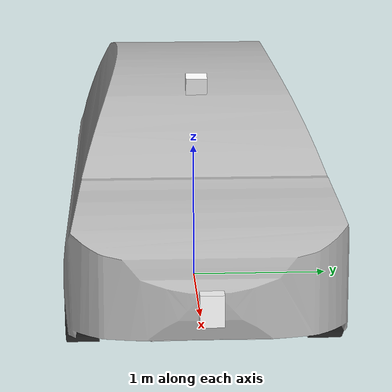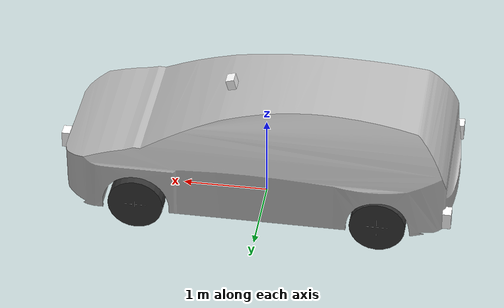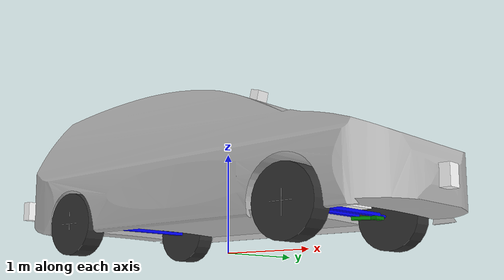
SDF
<?xml version='1.0' ?>
<sdf version="1.6">
  <model name="prius_1">
    <pose>0 0 0 0 0 0</pose>
    <!-- The following link and fixed joint positions the model's root to be in
    the middle of the vehicle's rear axle. See #5341. -->
    <link name="root">
      <pose>-1.40948 0 0.378326 0 0 0</pose>
    </link>
    <joint name="root_to_chassis_floor_joint" type="fixed">
      <parent>root</parent>
      <child>chassis_floor</child>
      <pose>0 0 0 0 0 0</pose>
    </joint>
    <link name="chassis_floor">
      <pose>0 0 0.378326 0 0 0</pose>
      <inertial>
        <pose>0 0 0 0 0 0</pose>
        <!-- TODO(shensquared): Refine the weight distribution when the model is
             of higher fidelity. -->
        <mass>1360</mass>
        <inertia>
          <ixx>63.858358934</ixx>
          <ixy>0</ixy>
          <ixz>0</ixz>
          <iyy>940.662671467</iyy>
          <iyz>0</iyz>
          <izz>1004.304312533</izz>
        </inertia>
      </inertial>
      <visual name="main">
        <pose>0 0 0 0 0 0</pose>
        <geometry>
          <box>
            <size>2.8808 0.75 0.030921</size>
          </box>
        </geometry>
        <material>
          <diffuse>1 1 1 1</diffuse>
        </material>
      </visual>
    </link>
    <link name="front_axle">
      <pose>1.40948 0 0.323342 0 0 0</pose>
      <visual name="visual">
        <pose>0 0 0 0 0 0</pose>
        <geometry>
          <box>
            <size>0.061842 1.05132 0.030921</size>
          </box>
        </geometry>
        <material>
          <diffuse>0 0 1 1</diffuse>
        </material>
      </visual>
    </link>
    <link name="left_tie_rod_arm">
      <pose>1.23701032 0.40850253 0.292422 0 0 0</pose>
      <visual name="v2">
        <pose>.06385963 0.03192981 0 0 0 0.463648</pose>
        <geometry>
          <box>
            <size>0.204637 0.061842 0.030921</size>
          </box>
        </geometry>
        <material>
          <diffuse>0 0.5 0 1</diffuse>
        </material>
      </visual>
      <visual name="v1">
        <pose>.17246863 0.10851978 0 0 -0 0</pose>
        <geometry>
          <box>
            <size>0.061842 0.140955 0.030921</size>
          </box>
        </geometry>
        <material>
          <diffuse>0 0.5 0 1</diffuse>
        </material>
      </visual>
    </link>
    <link name="left_hub">
      <pose>1.40948 0.61841 0.316482 1.570796326794896557998982 0 0</pose>
      <visual name="visual">
        <pose>0 0 0 0 0 0</pose>
        <geometry>
          <cylinder>
            <length>0.0618421</length>
            <radius>0.0154605</radius>
          </cylinder>
        </geometry>
        <material>
          <diffuse>0 0 1 1</diffuse>
        </material>
      </visual>
    </link>
    <link name="tie_rod">
      <pose>1.23702 0 0.323342 0 0 0</pose>
      <visual name="visual">
        <pose>0 0 0 0 0 0</pose>
        <geometry>
          <box>
            <size>0.061842 0.878847 0.030921</size>
          </box>
        </geometry>
        <material>
          <diffuse>0 0 1 1</diffuse>
        </material>
      </visual>
    </link>
    <link name="left_wheel">
      <pose>1.40948 0.801993 0.3164819999999999855511135
        1.570796326794896557998982 0 0</pose>
      <inertial>
        <mass>14.28</mass>
        <inertia>
          <ixx>0.499912</ixx>
          <ixy>0</ixy>
          <ixz>0</ixz>
          <iyy>0.778439</iyy>
          <iyz>0</iyz>
          <izz>0.499912</izz>
        </inertia>
      </inertial>
      <visual name="m2">
        <pose>0 0 -.1075 0 1.570796326794896557998982
          3.141592653589793115997963</pose>
        <material>
          <diffuse>0.9 0.9 0.9 1</diffuse>
        </material>
        <geometry>
          <box>
            <size>0.0025 0.0025 0.25</size>
          </box>
        </geometry>
      </visual>
      <visual name="wheel">
        <pose>0 0 0 0 0 0</pose>
        <geometry>
          <cylinder>
            <length>0.215</length>
            <radius>0.323342</radius>
          </cylinder>
        </geometry>
        <material>
          <diffuse>0.2 0.2 0.2 1</diffuse>
        </material>
      </visual>
      <visual name="m1">
        <pose>0 0 -.1075 0 1.570796326794896557998982
          1.570796326794896557998982</pose>
        <material>
          <diffuse>0.9 0.9 0.9 1</diffuse>
        </material>
        <geometry>
          <box>
            <size>0.0025 0.0025 0.25</size>
          </box>
        </geometry>
      </visual>
      <collision name="wheel">
        <pose>0 0 0 0 0 0</pose>
        <geometry>
          <cylinder>
            <radius>0.323342</radius>
            <length>0.215</length>
          </cylinder>
        </geometry>
      </collision>
    </link>
    <link name="right_tie_rod_arm">
      <pose>1.23701032 -0.40849616 0.292422 0 0 0</pose>
      <visual name="v1">
        <pose>.17246863 -0.10851978 0 0 -0 0</pose>
        <geometry>
          <box>
            <size>0.061842 0.140955 0.030921</size>
          </box>
        </geometry>
        <material>
          <diffuse>0 0.5 0 1</diffuse>
        </material>
      </visual>
      <visual name="v2">
        <pose>.06385963 -0.03192981 0 0 0 -0.463648</pose>
        <geometry>
          <box>
            <size>0.204637 0.061842 0.030921</size>
          </box>
        </geometry>
        <material>
          <diffuse>0 0.5 0 1</diffuse>
        </material>
      </visual>
    </link>
    <link name="right_hub">
      <pose>1.40948 -0.61841 0.316482 1.570796326794896557998982 0 0</pose>
      <visual name="visual">
        <pose>0 0 0 0 0 0</pose>
        <geometry>
          <cylinder>
            <length>0.0618421</length>
            <radius>0.0154605</radius>
          </cylinder>
        </geometry>
        <material>
          <diffuse>0 0 1 1</diffuse>
        </material>
      </visual>
    </link>
    <link name="right_wheel">
      <pose>1.40948 -0.80198 0.3164819999999999855511135
        1.570796326794896557998982 0 0</pose>
      <inertial>
        <mass>14.28</mass>
        <inertia>
          <ixx>0.499912</ixx>
          <ixy>0</ixy>
          <ixz>0</ixz>
          <iyy>0.778439</iyy>
          <iyz>0</iyz>
          <izz>0.499912</izz>
        </inertia>
      </inertial>
      <visual name="m2">
        <pose>0 0 .1075 0 1.570796326794896557998982
          3.141592653589793115997963</pose>
        <material>
          <diffuse>0.9 0.9 0.9 1</diffuse>
        </material>
        <geometry>
          <box>
            <size>0.0025 0.0025 0.25</size>
          </box>
        </geometry>
      </visual>
      <visual name="wheel">
        <pose>0 0 0 0 0 0</pose>
        <geometry>
          <cylinder>
            <length>0.215</length>
            <radius>0.323342</radius>
          </cylinder>
        </geometry>
        <material>
          <diffuse>0.2 0.2 0.2 1</diffuse>
        </material>
      </visual>
      <visual name="m1">
        <pose>0 0 0.1075 0 1.570796326794896557998982
          1.570796326794896557998982</pose>
        <material>
          <diffuse>0.9 0.9 0.9 1</diffuse>
        </material>
        <geometry>
          <box>
            <size>0.0025 0.0025 0.25</size>
          </box>
        </geometry>
      </visual>
      <collision name="wheel">
        <pose>0 0 0 0 0 0</pose>
        <geometry>
          <cylinder>
            <radius>0.323342</radius>
            <length>0.215</length>
          </cylinder>
        </geometry>
      </collision>
    </link>
    <link name="rear_axle">
      <pose>-1.40948 0 0.323342 0 0 0</pose>
      <visual name="visual">
        <pose>0 0 0 0 0 0</pose>
        <geometry>
          <box>
            <size>0.061842 1.38898 0.030921</size>
          </box>
        </geometry>
        <material>
          <diffuse>0 0 1 1</diffuse>
        </material>
      </visual>
    </link>
    <link name="left_wheel_rear">
      <pose>-1.40948 0.8019899999999999806732376 0.323342
        1.570796326794896557998982 0 0</pose>
      <inertial>
        <mass>14.28</mass>
        <inertia>
          <ixx>0.499912</ixx>
          <ixy>0</ixy>
          <ixz>0</ixz>
          <iyy>0.778439</iyy>
          <iyz>0</iyz>
          <izz>0.499912</izz>
        </inertia>
      </inertial>
      <visual name="m2">
        <pose>0 0 -.1075 0 1.570796326794896557998982
          3.141592653589793115997963</pose>
        <material>
          <diffuse>0.9 0.9 0.9 1</diffuse>
        </material>
        <geometry>
          <box>
            <size>0.0025 0.0025 0.25</size>
          </box>
        </geometry>
      </visual>
      <visual name="m1">
        <pose>0 0 -.1075 0 1.570796326794896557998982
          1.570796326794896557998982</pose>
        <material>
          <diffuse>0.9 0.9 0.9 1</diffuse>
        </material>
        <geometry>
          <box>
            <size>0.0025 0.0025 0.25</size>
          </box>
        </geometry>
      </visual>
      <visual name="wheel">
        <pose>0 0 0 0 0 0</pose>
        <geometry>
          <cylinder>
            <length>0.215</length>
            <radius>0.323342</radius>
          </cylinder>
        </geometry>
        <material>
          <diffuse>0.2 0.2 0.2 1</diffuse>
        </material>
      </visual>
      <collision name="wheel">
        <pose>0 0 0 0 0 0</pose>
        <geometry>
          <cylinder>
            <radius>0.323342</radius>
            <length>0.215</length>
          </cylinder>
        </geometry>
      </collision>
    </link>
    <link name="right_wheel_rear">
      <pose>-1.40948 -0.8019899999999999806732376 0.323342
        1.570796326794896557998982 0 0</pose>
      <inertial>
        <mass>14.28</mass>
        <inertia>
          <ixx>0.499912</ixx>
          <ixy>0</ixy>
          <ixz>0</ixz>
          <iyy>0.778439</iyy>
          <iyz>0</iyz>
          <izz>0.499912</izz>
        </inertia>
      </inertial>
      <visual name="m2">
        <pose>0 0 .1075 0 1.570796326794896557998982
          3.141592653589793115997963</pose>
        <material>
          <diffuse>0.9 0.9 0.9 1</diffuse>
        </material>
        <geometry>
          <box>
            <size>0.0025 0.0025 0.25</size>
          </box>
        </geometry>
      </visual>
      <visual name="wheel">
        <pose>0 0 0 0 0 0</pose>
        <geometry>
          <cylinder>
            <length>0.215</length>
            <radius>0.323342</radius>
          </cylinder>
        </geometry>
        <material>
          <diffuse>0.2 0.2 0.2 1</diffuse>
        </material>
      </visual>
      <visual name="m1">
        <pose>0 0 .1075 0 1.570796326794896557998982
          1.570796326794896557998982</pose>
        <material>
          <diffuse>0.9 0.9 0.9 1</diffuse>
        </material>
        <geometry>
          <box>
            <size>0.0025 0.0025 0.25</size>
          </box>
        </geometry>
      </visual>
      <collision name="wheel">
        <pose>0 0 0 0 0 0</pose>
        <geometry>
          <cylinder>
            <radius>0.323342</radius>
            <length>0.215</length>
          </cylinder>
        </geometry>
      </collision>
    </link>
    <link name="body">
      <pose>0 0 0.385184 0 0 0</pose>
      <inertial>
        <pose>0 0 0 0 0 0</pose>
        <mass>54.2794</mass>
        <!-- TODO(shensquared): Work with Steve to verify the inertia values
        below are reasonable. -->
        <inertia>
          <ixx>0.0216238</ixx>
          <ixy>0</ixy>
          <ixz>0</ixz>
          <iyy>5.00375</iyy>
          <iyz>0</iyz>
          <izz>5.01672</izz>
        </inertia>
      </inertial>
      <visual name="visual">
        <pose>-2.27 -0.91139 -0.21858 0 0 0</pose>
        <geometry>
          <mesh>
            <uri>package://prius/prius.dae</uri>
          </mesh>
        </geometry>
        <material>
          <emissive>0 0 0 1</emissive>
        </material>
      </visual>
    </link>
    <joint name="chassis_floor_axle" type="fixed">
      <parent>chassis_floor</parent>
      <child>front_axle</child>
      <pose>0 0 0 0 0 0</pose>
    </joint>
    <joint name="steering" type="revolute">
      <parent>front_axle</parent>
      <child>left_tie_rod_arm</child>
      <pose>0.17246968 0.08622747 0 0 0 0</pose>
      <axis>
        <xyz>0 0 1</xyz>
        <limit>
          <lower>-0.401426</lower>
          <upper>0.5</upper>
        </limit>
      </axis>
    </joint>
    <joint name="left_hub" type="fixed">
      <parent>left_tie_rod_arm</parent>
      <child>left_hub</child>
      <pose>0 0 0 0 0 0</pose>
    </joint>
    <joint name="left_pin" type="revolute">
      <parent>left_tie_rod_arm</parent>
      <child>tie_rod</child>
      <pose>0 0.4085 0 0 0 0</pose>
      <axis>
        <xyz>0 0 1</xyz>
        <limit>
          <lower>-1.5</lower>
          <upper>1.5</upper>
          <effort>0</effort>
        </limit>
      </axis>
    </joint>
    <joint name="left_wheel_joint" type="revolute">
      <parent>left_hub</parent>
      <child>left_wheel</child>
      <pose>0 0 0 0 0 0</pose>
      <axis>
        <xyz>0 1 0</xyz>
        <use_parent_model_frame>1</use_parent_model_frame>
      </axis>
    </joint>
    <joint name="axle_tie_rod_arm" type="revolute">
      <parent>front_axle</parent>
      <child>right_tie_rod_arm</child>
      <pose>0.17246968 -0.08623384 0 0 0 0</pose>
      <axis>
        <xyz>0 0 1</xyz>
        <limit>
          <lower>-0.401426</lower>
          <upper>0.5</upper>
          <effort>0</effort>
        </limit>
      </axis>
    </joint>
    <joint name="right_hub" type="fixed">
      <parent>right_tie_rod_arm</parent>
      <child>right_hub</child>
      <pose>0 0 0 0 0 0</pose>
    </joint>
    <joint name="right_pin" type="revolute">
      <parent>right_tie_rod_arm</parent>
      <child>tie_rod</child>
      <pose>0 -0.817006 0 0 0 0</pose>
      <axis>
        <xyz>0 0 1</xyz>
        <limit>
          <lower>-3.141592653589793115997963</lower>
          <upper>3.141592653589793115997963</upper>
          <effort>0</effort>
        </limit>
      </axis>
    </joint>
    <joint name="right_wheel_joint" type="revolute">
      <parent>right_hub</parent>
      <child>right_wheel</child>
      <pose>0 0 0 0 0 0</pose>
      <axis>
        <xyz>0 1 0</xyz>
        <use_parent_model_frame>1</use_parent_model_frame>
      </axis>
    </joint>
    <joint name="chassis_rear_axle" type="fixed">
      <parent>chassis_floor</parent>
      <child>rear_axle</child>
      <pose>0 0 0 0 0 0</pose>
    </joint>
    <joint name="rear_left_wheel_joint" type="revolute">
      <parent>rear_axle</parent>
      <child>left_wheel_rear</child>
      <pose>0 0 0 0 0 0</pose>
      <axis>
        <xyz>0 1 0</xyz>
        <use_parent_model_frame>1</use_parent_model_frame>
        <limit>
          <effort>0</effort>
        </limit>
      </axis>
    </joint>
    <joint name="rear_right_wheel_joint" type="revolute">
      <parent>rear_axle</parent>
      <child>right_wheel_rear</child>
      <pose>0 0 0 0 0 0</pose>
      <axis>
        <xyz>0 1 0</xyz>
        <use_parent_model_frame>1</use_parent_model_frame>
        <limit>
          <effort>0</effort>
        </limit>
      </axis>
    </joint>
    <joint name="body" type="fixed">
      <parent>chassis_floor</parent>
      <child>body</child>
      <pose>0 0 0 0 0 0</pose>
    </joint>
    <link name="front_lidar_link">
      <pose>2.4 0 0.52 0 0 0</pose>
      <visual name="front_lidar_link">
        <pose>0 0 0 0 0 0</pose>
        <geometry>
          <box>
            <size>0.1 0.15 0.2</size>
          </box>
        </geometry>
        <material>
          <diffuse>1 1 1 1</diffuse>
        </material>
      </visual>
      <sensor name="front_laser" type="ray">
        <always_on>1</always_on>
        <visualize>1</visualize>
        <update_rate>20.000000</update_rate>
        <pose>.055 0 0 0 0 0</pose>
        <ray>
          <scan>
            <horizontal>
              <samples>640</samples>
              <resolution>1.000000</resolution>
              <min_angle>-1.570796326794896557998982</min_angle>
              <max_angle>1.570796326794896557998982</max_angle>
            </horizontal>
          </scan>
          <range>
            <min>0.080000</min>
            <max>25.000000</max>
            <resolution>0.010000</resolution>
          </range>
        </ray>
        <plugin filename="libRayPlugin.so" name="front_laser"/>
      </sensor>
      <velocity_decay/>
    </link>
    <joint name="front_lidar_joint" type="fixed">
      <parent>chassis_floor</parent>
      <child>front_lidar_link</child>
      <pose>0 0 0 0 0 0</pose>
    </joint>
    <link name="top_lidar_link">
      <pose>0.4 0 1.5 0 0.261799 0</pose>
      <visual name="top_lidar_link">
        <pose>0 0 0 0 0 0</pose>
        <geometry>
          <box>
            <size>0.1 0.15 0.2</size>
          </box>
        </geometry>
        <material>
          <diffuse>1 1 1 1</diffuse>
        </material>
      </visual>
      <sensor name="top_laser" type="ray">
        <always_on>1</always_on>
        <visualize>1</visualize>
        <update_rate>20.000000</update_rate>
        <pose>.055 0 0 0 0 0</pose>
        <ray>
          <scan>
            <horizontal>
              <samples>640</samples>
              <resolution>1.000000</resolution>
              <min_angle>-1.570796326794896557998982</min_angle>
              <max_angle>1.570796326794896557998982</max_angle>
            </horizontal>
          </scan>
          <range>
            <min>0.080000</min>
            <max>25.000000</max>
            <resolution>0.010000</resolution>
          </range>
        </ray>
        <plugin filename="libRayPlugin.so" name="top_laser"/>
      </sensor>
      <velocity_decay/>
    </link>
    <joint name="top_lidar_joint" type="fixed">
      <parent>chassis_floor</parent>
      <child>top_lidar_link</child>
      <pose>0 0 0 0 0 0</pose>
    </joint>
    <link name="rear_right_lidar_link">
      <pose>-2.2 -0.85 0.52 0 0 3.141592653589793115997963</pose>
      <visual name="rear_right_lidar_link">
        <pose>0 0 0 0 0 0</pose>
        <geometry>
          <box>
            <size>0.1 0.15 0.2</size>
          </box>
        </geometry>
        <material>
          <diffuse>1 1 1 1</diffuse>
        </material>
      </visual>
      <sensor name="rear_right_laser" type="ray">
        <always_on>1</always_on>
        <visualize>1</visualize>
        <update_rate>20.000000</update_rate>
        <pose>0.055 0.08 0 0 0 0</pose>
        <ray>
          <scan>
            <horizontal>
              <samples>640</samples>
              <resolution>1.000000</resolution>
              <min_angle>-1.570796326794896557998982</min_angle>
              <max_angle>3.141592653589793115997963</max_angle>
            </horizontal>
          </scan>
          <range>
            <min>0.080000</min>
            <max>25.000000</max>
            <resolution>0.010000</resolution>
          </range>
        </ray>
        <plugin filename="libRayPlugin.so" name="rear_right_laser"/>
      </sensor>
      <velocity_decay/>
    </link>
    <joint name="rear_right_lidar_joint" type="fixed">
      <parent>chassis_floor</parent>
      <child>rear_right_lidar_link</child>
      <pose>0 0 0 0 0 0</pose>
    </joint>
    <link name="rear_left_lidar_link">
      <pose>-2.2 0.85 0.52 0 0 3.141592653589793115997963</pose>
      <visual name="rear_right_lidar_link">
        <pose>0 0 0 0 0 0</pose>
        <geometry>
          <box>
            <size>0.1 0.15 0.2</size>
          </box>
        </geometry>
        <material>
          <diffuse>1 1 1 1</diffuse>
        </material>
      </visual>
      <sensor name="rear_left_laser" type="ray">
        <always_on>1</always_on>
        <visualize>1</visualize>
        <update_rate>20.000000</update_rate>
        <pose>0.055 -0.08 0 0 0 0</pose>
        <ray>
          <scan>
            <horizontal>
              <samples>640</samples>
              <resolution>1.000000</resolution>
              <min_angle>-3.141592653589793115997963</min_angle>
              <max_angle>1.570796326794896557998982</max_angle>
            </horizontal>
          </scan>
          <range>
            <min>0.080000</min>
            <max>25.000000</max>
            <resolution>0.010000</resolution>
          </range>
        </ray>
        <plugin filename="libRayPlugin.so" name="rear_left_laser"/>
      </sensor>
      <velocity_decay/>
    </link>
    <joint name="rear_left_lidar_joint" type="fixed">
      <parent>chassis_floor</parent>
      <child>rear_left_lidar_link</child>
      <pose>0 0 0 0 0 0</pose>
    </joint>
  </model>
</sdf>
